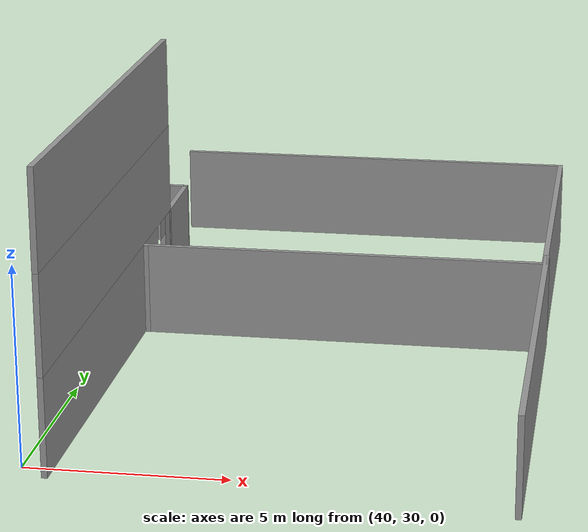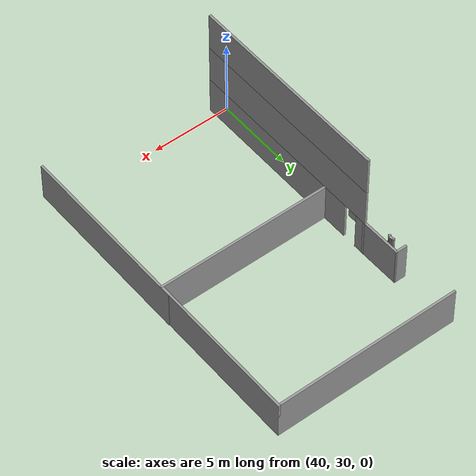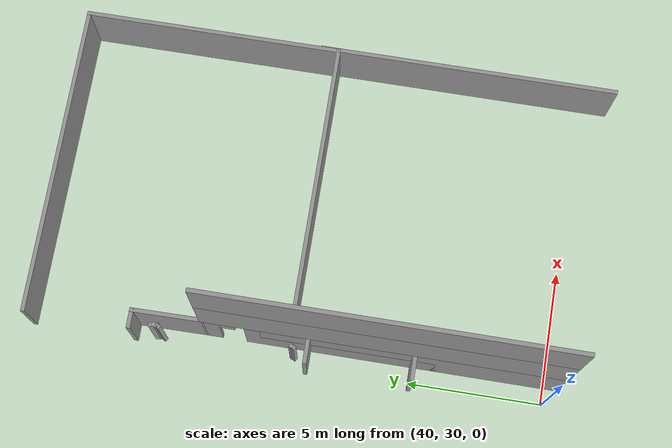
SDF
<sdf version="1.7">
 <model name="mapagazebo">
  <pose>-4.67869 9.01252 0 0 -0 0</pose>
  <link name="Wall_1243">
   <collision name="Wall_1243_Collision">
    <geometry><box><size>13.25 0.15 2.5</size></box></geometry>
    <pose>0 0 1.25 0 -0 0</pose>
   </collision>
   <visual name="Wall_1243_Visual">
    <pose>0 0 1.25 0 -0 0</pose>
    <geometry><box><size>13.25 0.15 2.5</size></box></geometry>
    <material>
     <script><uri>file://media/materials/scripts/gazebo.material</uri><name>Gazebo/Grey</name></script>
     <ambient>1 1 1 1</ambient>
    </material>
    <meta><layer>1</layer></meta>
   </visual>
   <pose>45.3749 27.077 2.5 0 -0 -1.5708</pose>
  </link>
  <link name="Wall_1867">
   <collision name="Wall_1867_Collision">
    <geometry><box><size>13.25 0.15 2.5</size></box></geometry>
    <pose>0 0 1.25 0 -0 0</pose>
   </collision>
   <visual name="Wall_1867_Visual">
    <pose>0 0 1.25 0 -0 0</pose>
    <geometry><box><size>13.25 0.15 2.5</size></box></geometry>
    <material>
     <script><uri>file://media/materials/scripts/gazebo.material</uri><name>Gazebo/Grey</name></script>
     <ambient>1 1 1 1</ambient>
    </material>
    <meta><layer>2</layer></meta>
   </visual>
   <pose>45.3749 27.077 5 0 -0 -1.5708</pose>
  </link>
  <link name="Wall_2080">
   <collision name="Wall_2080_Collision">
    <geometry><box><size>0.75 0.15 2.5</size></box></geometry>
    <pose>0 0 1.25 0 -0 0</pose>
   </collision>
   <visual name="Wall_2080_Visual">
    <pose>0 0 1.25 0 -0 0</pose>
    <geometry><box><size>0.75 0.15 2.5</size></box></geometry>
    <material>
     <script><uri>file://media/materials/scripts/gazebo.material</uri><name>Gazebo/Grey</name></script>
     <ambient>1 1 1 1</ambient>
    </material>
    <meta><layer>0</layer></meta>
   </visual>
   <pose>45.0478 36.171 0 0 -0 0</pose>
  </link>
  <link name="Wall_2081">
   <collision name="Wall_2081_Collision">
    <geometry><box><size>2.69411 0.15 2.5</size></box></geometry>
    <pose>0 0 1.25 0 -0 0</pose>
   </collision>
   <visual name="Wall_2081_Visual">
    <pose>0 0 1.25 0 -0 0</pose>
    <geometry><box><size>2.69411 0.15 2.5</size></box></geometry>
    <material>
     <script><uri>file://media/materials/scripts/gazebo.material</uri><name>Gazebo/Grey</name></script>
     <ambient>1 1 1 1</ambient>
    </material>
    <meta><layer>0</layer></meta>
   </visual>
   <pose>45.3613 34.899 0 0 -0 -1.56014</pose>
  </link>
  <link name="Wall_2082">
   <collision name="Wall_2082_Collision">
    <geometry><box><size>0.16 0.15 2.5</size></box></geometry>
    <pose>0 0 1.25 0 -0 0</pose>
   </collision>
   <visual name="Wall_2082_Visual">
    <pose>0 0 1.25 0 -0 0</pose>
    <geometry><box><size>0.16 0.15 2.5</size></box></geometry>
    <material>
     <script><uri>file://media/materials/scripts/gazebo.material</uri><name>Gazebo/Grey</name></script>
     <ambient>1 1 1 1</ambient>
    </material>
    <meta><layer>0</layer></meta>
   </visual>
   <pose>45.3799 33.627 0 0 -0 0</pose>
  </link>
  <link name="Wall_2084">
   <collision name="Wall_2084_Collision">
    <geometry><box><size>11.75 0.15 2.5</size></box></geometry>
    <pose>0 0 1.25 0 -0 0</pose>
   </collision>
   <visual name="Wall_2084_Visual">
    <pose>0 0 1.25 0 -0 0</pose>
    <geometry><box><size>11.75 0.15 2.5</size></box></geometry>
    <material>
     <script><uri>file://media/materials/scripts/gazebo.material</uri><name>Gazebo/Grey</name></script>
     <ambient>1 1 1 1</ambient>
    </material>
    <meta><layer>0</layer></meta>
   </visual>
   <pose>50.5478 40.021 0 0 -0 0</pose>
  </link>
  <link name="Wall_2085">
   <collision name="Wall_2085_Collision">
    <geometry><box><size>9.75 0.15 2.5</size></box></geometry>
    <pose>0 0 1.25 0 -0 0</pose>
   </collision>
   <visual name="Wall_2085_Visual">
    <pose>0 0 1.25 0 -0 0</pose>
    <geometry><box><size>9.75 0.15 2.5</size></box></geometry>
    <material>
     <script><uri>file://media/materials/scripts/gazebo.material</uri><name>Gazebo/Grey</name></script>
     <ambient>1 1 1 1</ambient>
    </material>
    <meta><layer>0</layer></meta>
   </visual>
   <pose>56.3478 35.221 0 0 -0 -1.5708</pose>
  </link>
  <link name="Wall_2086">
   <collision name="Wall_2086_Collision">
    <geometry><box><size>11 0.15 2.5</size></box></geometry>
    <pose>0 0 1.25 0 -0 0</pose>
   </collision>
   <visual name="Wall_2086_Visual">
    <pose>0 0 1.25 0 -0 0</pose>
    <geometry><box><size>11 0.15 2.5</size></box></geometry>
    <material>
     <script><uri>file://media/materials/scripts/gazebo.material</uri><name>Gazebo/Grey</name></script>
     <ambient>1 1 1 1</ambient>
    </material>
    <meta><layer>0</layer></meta>
   </visual>
   <pose>50.9228 30.421 0 0 -0 3.14159</pose>
  </link>
  <link name="Wall_2087">
   <collision name="Wall_2087_Collision">
    <geometry><box><size>0.16 0.15 2.5</size></box></geometry>
    <pose>0 0 1.25 0 -0 0</pose>
   </collision>
   <visual name="Wall_2087_Visual">
    <pose>0 0 1.25 0 -0 0</pose>
    <geometry><box><size>0.16 0.15 2.5</size></box></geometry>
    <material>
     <script><uri>file://media/materials/scripts/gazebo.material</uri><name>Gazebo/Grey</name></script>
     <ambient>1 1 1 1</ambient>
    </material>
    <meta><layer>0</layer></meta>
   </visual>
   <pose>45.5028 30.421 0 0 -0 0</pose>
  </link>
  <link name="Wall_2094">
   <collision name="Wall_2094_Collision">
    <geometry><box><size>11.25 0.15 2.5</size></box></geometry>
    <pose>0 0 1.25 0 -0 0</pose>
   </collision>
   <visual name="Wall_2094_Visual">
    <pose>0 0 1.25 0 -0 0</pose>
    <geometry><box><size>11.25 0.15 2.5</size></box></geometry>
    <material>
     <script><uri>file://media/materials/scripts/gazebo.material</uri><name>Gazebo/Grey</name></script>
     <ambient>1 1 1 1</ambient>
    </material>
    <meta><layer>0</layer></meta>
   </visual>
   <pose>56.3749 25.477 0 0 -0 1.5708</pose>
  </link>
  <link name="Wall_2105">
   <collision name="Wall_2105_Collision">
    <geometry><box><size>1 0.15 2.5</size></box></geometry>
    <pose>0 0 1.25 0 -0 0</pose>
   </collision>
   <visual name="Wall_2105_Visual">
    <pose>0 0 1.25 0 -0 0</pose>
    <geometry><box><size>1 0.15 2.5</size></box></geometry>
    <material>
     <script><uri>file://media/materials/scripts/gazebo.material</uri><name>Gazebo/Grey</name></script>
     <ambient>1 1 1 1</ambient>
    </material>
    <meta><layer>0</layer></meta>
   </visual>
   <pose>44.9225 29.7545 0 0 -0 3.14159</pose>
  </link>
  <link name="Wall_2107">
   <collision name="Wall_2107_Collision">
    <geometry><box><size>1 0.15 2.5</size></box></geometry>
    <pose>0 0 1.25 0 -0 0</pose>
   </collision>
   <visual name="Wall_2107_Visual">
    <pose>0 0 1.25 0 -0 0</pose>
    <geometry><box><size>1 0.15 2.5</size></box></geometry>
    <material>
     <script><uri>file://media/materials/scripts/gazebo.material</uri><name>Gazebo/Grey</name></script>
     <ambient>1 1 1 1</ambient>
    </material>
    <meta><layer>0</layer></meta>
   </visual>
   <pose>44.9225 25.9045 0 0 -0 0</pose>
  </link>
  <link name="Wall_2123">
   <collision name="Wall_2123_Collision">
    <geometry><box><size>0.15 0.15 2.5</size></box></geometry>
    <pose>0 0 1.25 0 -0 0</pose>
   </collision>
   <visual name="Wall_2123_Visual">
    <pose>0 0 1.25 0 -0 0</pose>
    <geometry><box><size>0.15 0.15 2.5</size></box></geometry>
    <material>
     <script><uri>file://media/materials/scripts/gazebo.material</uri><name>Gazebo/Grey</name></script>
     <ambient>1 1 1 1</ambient>
    </material>
    <meta><layer>0</layer></meta>
   </visual>
   <pose>44.9863 30.3137 0 0 -0 0</pose>
  </link>
  <link name="Wall_2124">
   <collision name="Wall_2124_Collision">
    <geometry><box><size>0.25 0.15 2.5</size></box></geometry>
    <pose>0 0 1.25 0 -0 0</pose>
   </collision>
   <visual name="Wall_2124_Visual">
    <pose>0 0 1.25 0 -0 0</pose>
    <geometry><box><size>0.25 0.15 2.5</size></box></geometry>
    <material>
     <script><uri>file://media/materials/scripts/gazebo.material</uri><name>Gazebo/Grey</name></script>
     <ambient>1 1 1 1</ambient>
    </material>
    <meta><layer>0</layer></meta>
   </visual>
   <pose>44.9613 30.2704 0 0 -0 -2.0944</pose>
  </link>
  <link name="Wall_2143">
   <collision name="Wall_2143_Collision">
    <geometry><box><size>0.25 0.15 2.5</size></box></geometry>
    <pose>0 0 1.25 0 -0 0</pose>
   </collision>
   <visual name="Wall_2143_Visual">
    <pose>0 0 1.25 0 -0 0</pose>
    <geometry><box><size>0.25 0.15 2.5</size></box></geometry>
    <material>
     <script><uri>file://media/materials/scripts/gazebo.material</uri><name>Gazebo/Grey</name></script>
     <ambient>1 1 1 1</ambient>
    </material>
    <meta><layer>0</layer></meta>
   </visual>
   <pose>44.938 35.3478 0 0 -0 -1.309</pose>
  </link>
  <link name="Wall_2144">
   <collision name="Wall_2144_Collision">
    <geometry><box><size>0.25 0.15 2.5</size></box></geometry>
    <pose>0 0 1.25 0 -0 0</pose>
   </collision>
   <visual name="Wall_2144_Visual">
    <pose>0 0 1.25 0 -0 0</pose>
    <geometry><box><size>0.25 0.15 2.5</size></box></geometry>
    <material>
     <script><uri>file://media/materials/scripts/gazebo.material</uri><name>Gazebo/Grey</name></script>
     <ambient>1 1 1 1</ambient>
    </material>
    <meta><layer>0</layer></meta>
   </visual>
   <pose>44.9509 35.2495 0 0 -0 -1.5708</pose>
  </link>
  <link name="Wall_2145">
   <collision name="Wall_2145_Collision">
    <geometry><box><size>0.25 0.15 2.5</size></box></geometry>
    <pose>0 0 1.25 0 -0 0</pose>
   </collision>
   <visual name="Wall_2145_Visual">
    <pose>0 0 1.25 0 -0 0</pose>
    <geometry><box><size>0.25 0.15 2.5</size></box></geometry>
    <material>
     <script><uri>file://media/materials/scripts/gazebo.material</uri><name>Gazebo/Grey</name></script>
     <ambient>1 1 1 1</ambient>
    </material>
    <meta><layer>0</layer></meta>
   </visual>
   <pose>44.9259 35.1562 0 0 -0 -2.0944</pose>
  </link>
  <link name="Wall_585">
   <pose>45.3749 27.077 0 0 -0 -1.5708</pose>
   <visual name="Wall_585_Visual_0">
    <pose>-6.26669 0 1.25 0 -0 0</pose>
    <geometry><box><size>0.716615 0.15 2.5</size></box></geometry>
    <material>
     <script><uri>file://media/materials/scripts/gazebo.material</uri><name>Gazebo/Grey</name></script>
     <ambient>1 1 1 1</ambient>
    </material>
    <meta><layer>0</layer></meta>
   </visual>
   <collision name="Wall_585_Collision_0">
    <geometry><box><size>0.716615 0.15 2.5</size></box></geometry>
    <pose>-6.26669 0 1.25 0 -0 0</pose>
   </collision>
   <visual name="Wall_585_Visual_1">
    <pose>0.808307 0 1.25 0 -0 0</pose>
    <geometry><box><size>11.6334 0.15 2.5</size></box></geometry>
    <material>
     <script><uri>file://media/materials/scripts/gazebo.material</uri><name>Gazebo/Grey</name></script>
     <ambient>1 1 1 1</ambient>
    </material>
    <meta><layer>0</layer></meta>
   </visual>
   <collision name="Wall_585_Collision_1">
    <geometry><box><size>11.6334 0.15 2.5</size></box></geometry>
    <pose>0.808307 0 1.25 0 -0 0</pose>
   </collision>
   <visual name="Wall_585_Visual_2">
    <pose>1.09134 0 1.25 0 -0 0</pose>
    <geometry><box><size>11.0673 0.15 2.5</size></box></geometry>
    <material>
     <script><uri>file://media/materials/scripts/gazebo.material</uri><name>Gazebo/Grey</name></script>
     <ambient>1 1 1 1</ambient>
    </material>
    <meta><layer>0</layer></meta>
   </visual>
   <collision name="Wall_585_Collision_2">
    <geometry><box><size>11.0673 0.15 2.5</size></box></geometry>
    <pose>1.09134 0 1.25 0 -0 0</pose>
   </collision>
   <visual name="Wall_585_Visual_3">
    <pose>-5.62535 0 2.25 0 -0 0</pose>
    <geometry><box><size>0.566071 0.15 0.5</size></box></geometry>
    <material>
     <script><uri>file://media/materials/scripts/gazebo.material</uri><name>Gazebo/Grey</name></script>
     <ambient>1 1 1 1</ambient>
    </material>
    <meta><layer>0</layer></meta>
   </visual>
   <collision name="Wall_585_Collision_3">
    <geometry><box><size>0.566071 0.15 0.5</size></box></geometry>
    <pose>-5.62535 0 2.25 0 -0 0</pose>
   </collision>
  </link>
  <static>1</static>
 </model>
</sdf>
